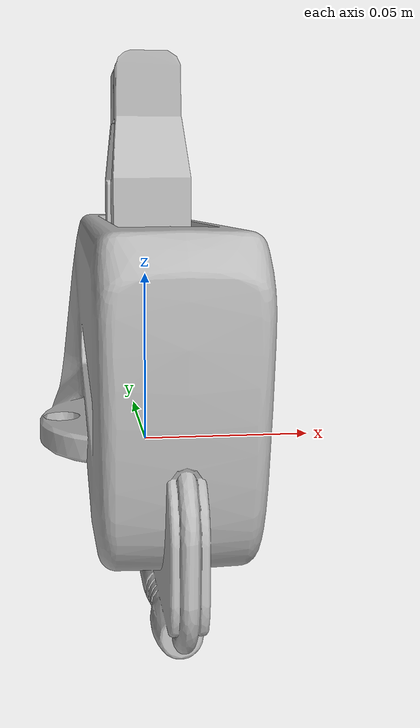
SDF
<?xml version="1.0"?>
<sdf version="1.7">
  <model name="fr3_hand">
    <link name="fr3_hand_link">
      <inertial>
        <pose>-2.7666e-06 -0.00061547 0.02393 0 0 0</pose>
        <mass>0.73</mass>
        <inertia>
          <ixx>0.0024773</ixx>
          <ixy>-4.3259e-07</ixy>
          <ixz>9.8066e-08</ixz>
          <iyy>0.000498</iyy>
          <iyz>-4.4935e-05</iyz>
          <izz>0.0022417</izz>
        </inertia>
      </inertial>
      <visual name="fr3_hand_link_visual">
        <geometry>
          <mesh>
            <scale>1 1 1</scale>
            <uri>visual/hand.obj</uri>
          </mesh>
        </geometry>
      </visual>
      <collision name="fr3_hand_link_collision">
        <geometry>
          <mesh>
            <uri>collision/hand.obj</uri>
          </mesh>
        </geometry>
      </collision>
    </link>

    <joint name='fr3_left_finger_joint' type='prismatic'>
      <pose relative_to='fr3_hand_link'>0 0 0.0584 0 0 0</pose>
      <parent>fr3_hand_link</parent>
      <child>fr3_left_finger</child>
      <axis>
        <xyz>0 1 0</xyz>
        <limit>
          <lower>0</lower>
          <upper>0.04</upper>
          <effort>20</effort>
          <velocity>0.2</velocity>
        </limit>
        <dynamics>
          <damping>3.0</damping>
          <friction>0.4</friction>
          <spring_reference>0</spring_reference>
          <spring_stiffness>0</spring_stiffness>
        </dynamics>
      </axis>
    </joint>

    <link name="fr3_left_finger">
      <pose relative_to="fr3_left_finger_joint">0 0 0 0 0 0</pose>
        <inertial>
          <pose>-3.5713e-19 0.013887 0.02436 0 0 0</pose>
        <mass>0.015</mass>
          <inertia>
          <ixx>4.9423e-06</ixx>
          <ixy>-5.6195e-23</ixy>
          <ixz>-3.3497e-22</ixz>
          <iyy>4.7655e-06</iyy>
          <iyz>9.9792e-07</iyz>
          <izz>1.1104e-06</izz>
        </inertia>
        </inertial>
        <visual name="fr3_left_finger_visual">
          <geometry>
            <mesh>
              <scale>1 1 1</scale>
              <uri>visual/finger.obj</uri>
            </mesh>
          </geometry>
        </visual>
        <collision name="fr3_left_finger_collision">
          <geometry>
            <mesh>
              <uri>collision/finger.obj</uri>
            </mesh>
          </geometry>
        </collision>
    </link>

    <joint name='fr3_right_finger_joint' type='prismatic'>
      <pose relative_to='fr3_hand_link'>0 0 0.0584 0 0 0</pose>
      <parent>fr3_hand_link</parent>
      <child>fr3_right_finger</child>
      <axis>
        <xyz>0 -1 0</xyz>
        <limit>
          <lower>0</lower>
          <upper>0.04</upper>
          <effort>20</effort>
          <velocity>0.2</velocity>
        </limit>
        <dynamics>
          <damping>3.0</damping>
          <friction>0.4</friction>
          <spring_reference>0</spring_reference>
          <spring_stiffness>0</spring_stiffness>
        </dynamics>
      </axis>
    </joint>

    <link name="fr3_right_finger">
      <pose relative_to="fr3_right_finger_joint">0 0 0 0 0 0</pose>
        <inertial>
          <pose>-3.5713e-19 0.013887 0.02436 0 0 0</pose>
        <mass>0.015</mass>
          <inertia>
          <ixx>4.9423e-06</ixx>
          <ixy>-5.6195e-23</ixy>
          <ixz>-3.3497e-22</ixz>
          <iyy>4.7655e-06</iyy>
          <iyz>9.9792e-07</iyz>
          <izz>1.1104e-06</izz>
        </inertia>
        </inertial>
        <visual name="fr3_right_finger_visual">
          <pose>0 0 0 0 0 3.141592653589793</pose>
          <geometry>
            <mesh>
              <scale>1 1 1</scale>
              <uri>visual/finger.obj</uri>
            </mesh>
          </geometry>
        </visual>
        <collision name="fr3_right_finger_collision">
          <geometry>
            <mesh>
              <uri>collision/finger.obj</uri>
            </mesh>
          </geometry>
        </collision>
    </link>
  </model>
</sdf>
